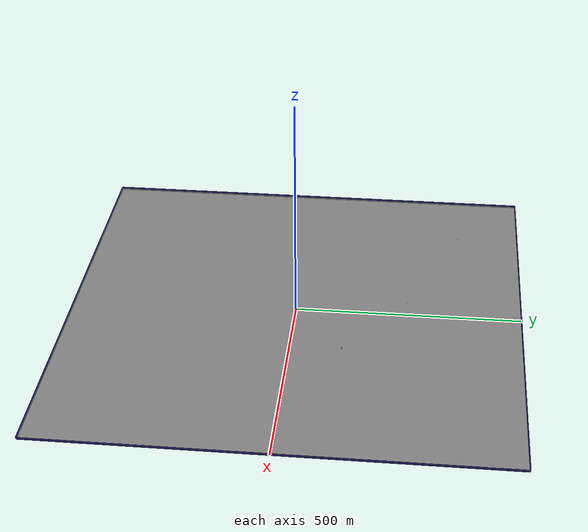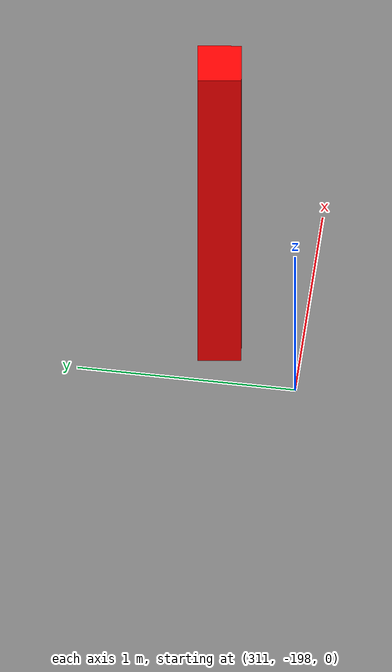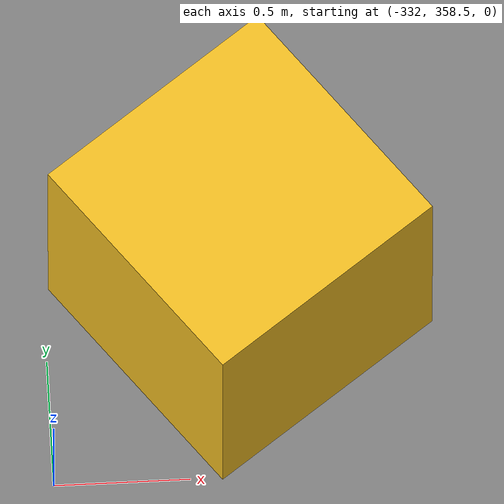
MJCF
<mujoco model="unnamed_model">
  <default>
    <default class="/" />
    <default class="border/" />
    <default class="border_1/" />
    <default class="border_2/" />
    <default class="border_3/" />
    <default class="agentplaceholder/" />
    <default class="placeholder_box/" />
    <default class="stone0/" />
    <default class="stone1/" />
    <default class="tree/" />
    <default class="tree_1/" />
  </default>
  <worldbody>
    <body name="border/">
      <body name="border/border" pos="0 501 2">
        <geom name="border/border_geom" class="border/" type="box" size="500 1 2" rgba="0.035000000000000003 0.016 0.28999999999999998 1" />
      </body>
    </body>
    <body name="border_1/">
      <body name="border_1/border" pos="0 -501 2">
        <geom name="border_1/border_geom" class="border_1/" type="box" size="500 1 2" rgba="0.035000000000000003 0.016 0.28999999999999998 1" />
      </body>
    </body>
    <body name="border_2/">
      <body name="border_2/border" pos="501 0 2">
        <geom name="border_2/border_geom" class="border_2/" type="box" size="1 500 2" rgba="0.035000000000000003 0.016 0.28999999999999998 1" />
      </body>
    </body>
    <body name="border_3/">
      <body name="border_3/border" pos="-501 0 2">
        <geom name="border_3/border_geom" class="border_3/" type="box" size="1 500 2" rgba="0.035000000000000003 0.016 0.28999999999999998 1" />
      </body>
    </body>
    <body euler="0 0 -79.882389463372093" name="agentplaceholder/">
      <joint name="agentplaceholder/boxagent_freeJoint/" class="/" type="free" />
      <body name="agentplaceholder/agentplaceholder" pos="-250 0 3" euler="0 0 0">
        <geom name="agentplaceholder/boxagent_geom" class="agentplaceholder/" type="box" size="0.5 0.5 0.5" rgba="0.94899999999999995 0.74509999999999998 0.1333 1" euler="0 0 0" />
      </body>
    </body>
    <body name="placeholder_box/">
      <body name="placeholder_box/placeholder_box" pos="-331.28089999999997 359.1943 0.5" euler="0 0 -143.16306540491405">
        <geom name="placeholder_box/box_geom" class="placeholder_box/" type="box" size="0.5 0.5 0.5" rgba="0.94899999999999995 0.74509999999999998 0.1333 1" euler="0 0 0" />
      </body>
    </body>
    <body name="stone0/">
      <body name="stone0/stone0" pos="141.15935000000002 -326.791 0.10000000000000001" euler="0 0 127.37501436081607">
        <geom name="stone0/stone_geom" class="stone0/" type="box" size="0.10000000000000001 0.10000000000000001 2" rgba="1 0 0 1" />
      </body>
    </body>
    <body name="stone1/">
      <body name="stone1/stone1" pos="366.79020000000003 -38.849299999999971 0.10000000000000001" euler="0 0 167.41536462966593">
        <geom name="stone1/stone_geom" class="stone1/" type="box" size="0.10000000000000001 0.10000000000000001 2" rgba="1 0 0 1" />
      </body>
    </body>
    <body name="tree/">
      <body name="tree/tree" pos="139.92635000000001 112.51499999999999 0.10000000000000001" euler="0 0 -150.17591135964039">
        <geom name="tree/tree_geom" class="tree/" type="box" size="0.10000000000000001 0.10000000000000001 2" rgba="1 0 0 1" />
      </body>
    </body>
    <body name="tree_1/">
      <body name="tree_1/tree" pos="311.22620000000001 -197.62270000000001 0.10000000000000001" euler="0 0 -83.060365757581124">
        <geom name="tree_1/tree_geom" class="tree_1/" type="box" size="0.10000000000000001 0.10000000000000001 2" rgba="1 0 0 1" />
      </body>
    </body>
    <geom name="base_plane" class="/" type="plane" size="500 500 0.10000000000000001" />
  </worldbody>
</mujoco>
